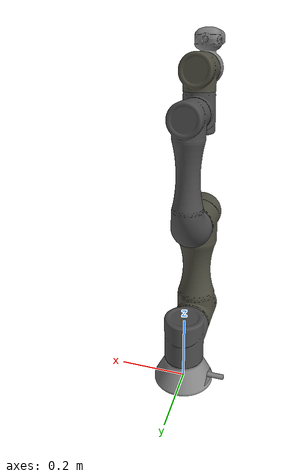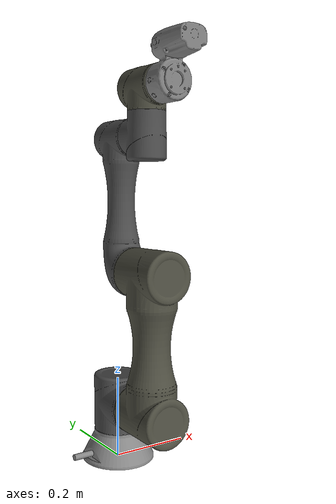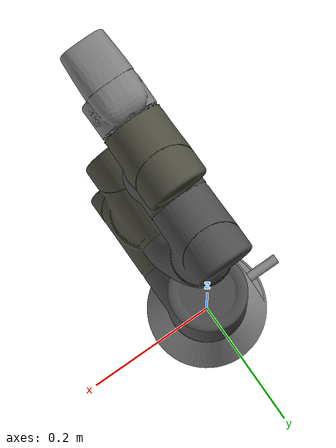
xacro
<?xml version="1.0"?>
<robot name="tm700" xmlns:xacro="http://www.ros.org/wiki/xacro">

  <xacro:property name="prefix" value="tm_" />

  <!-- gazebo stuff -->
  <xacro:include filename="$(find tm_description)/urdf/common.gazebo.xacro" />
  <xacro:include filename="$(find tm_description)/urdf/tm.gazebo.xacro" />
  <xacro:tm_arm_gazebo prefix="${prefix}" />

  <!-- tm700 -->
  <xacro:include filename="$(find tm_description)/urdf/tm700.urdf.xacro" />
  <xacro:tm700_robot prefix="${prefix}" joint_limited="true" />

  <link name="world" />
  <joint name="world_joint" type="fixed">
    <parent link="world" />
    <child link="tm_base" />
    <origin xyz="0 0 0" rpy="0 0 0" />
  </joint>

</robot>

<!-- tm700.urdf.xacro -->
<robot xmlns:xacro="http://www.ros.org/wiki/xacro">

  <!-- transmission -->
  <xacro:include filename="$(find tm_description)/urdf/tm.transmission.xacro" />

  <!-- Mass parameters -->
  <!--xacro:property name="pi" value="3.14159265" /-->

  <xacro:property name="base_mass" value="1.0" />
  <xacro:property name="shoulder_mass" value="4.5" />
  <xacro:property name="arm_1_mass" value="10.5" />
  <xacro:property name="arm_2_mass" value="2.1" />
  <xacro:property name="wrist_1_mass" value="1.45" />
  <xacro:property name="wrist_2_mass" value="1.45" />
  <xacro:property name="wrist_3_mass" value="0.4" />

  <!-- Kinematic model -->
  <!-- Properties from tmcontrol.conf -->
  <xacro:property name="tm_d1" value="0.1451" />
  <xacro:property name="tm_a2" value="0.3290" />
  <xacro:property name="tm_a3" value="0.3115" />
  <xacro:property name="tm_d4" value="0.1222" />
  <xacro:property name="tm_d5" value="0.1060" />
  <xacro:property name="tm_d6" value="0.1144" />

  <!-- offsets for shoulder/elbow joints -->
  <xacro:property name="shoulder_offset" value="-0.146" />  <!-- measured from model -->
  <xacro:property name="elbow_offset" value="0.1298" /> <!-- measured from model -->
  <xacro:property name="wrist_offset" value="${-tm_d4 - elbow_offset - shoulder_offset}" />

  <!-- link lengths used in model -->
  <xacro:property name="shoulder_height" value="${tm_d1}" />
  <xacro:property name="arm_1_length" value="${tm_a2}" />
  <xacro:property name="arm_2_length" value="${tm_a3}" />
  <xacro:property name="wrist_1_length" value="tm_d5}" />
  <xacro:property name="wrist_2_length" value="${tm_d5}" />
  <xacro:property name="wrist_3_length" value="0.0565" />
  <xacro:property name="ee_length" value="${tm_d6 - wrist_3_length}" />

  <xacro:macro name="cylinder_inertial" params="radius length mass *origin">
    <inertial>
      <mass value="${mass}" />
      <xacro:insert_block name="origin" />
      <inertia ixx="${0.0833333 * mass * (3 * radius * radius + length * length)}" ixy="0.0" ixz="0.0"
        iyy="${0.0833333 * mass * (3 * radius * radius + length * length)}" iyz="0.0"
        izz="${0.5 * mass * radius * radius}" />
    </inertial>
  </xacro:macro>

  <xacro:macro name="tm700_robot" params="prefix joint_limited">

    <!-- transmission prefix -->
    <xacro:tm_arm_transmission prefix="${prefix}" />

    <link name="${prefix}base_link" >
      <visual>
        <geometry>
	  <mesh filename="package://tm_description/meshes/tm700/visual/Base.dae" />
        </geometry>

      </visual>
      <collision>
        <geometry>
	  <mesh filename="package://tm_description/meshes/tm700/collision/base.STL" />
        </geometry>
      </collision>

      <xacro:cylinder_inertial radius="0.06" length="0.05" mass="${base_mass}">
        <origin xyz="0.0 0.0 0.0" rpy="0 0 0" />
      </xacro:cylinder_inertial>

    </link>

    <link name="${prefix}shoulder_1_link">
      <visual>
        <geometry>
	  <mesh filename="package://tm_description/meshes/tm700/visual/Shoulder1.dae" />
        </geometry>

      </visual>
      <collision>
        <geometry>
	  <mesh filename="package://tm_description/meshes/tm700/collision/shoulder_1.STL" />
        </geometry>
      </collision>

      <xacro:cylinder_inertial radius="0.06" length="0.15" mass="${shoulder_mass}">
        <origin xyz="0.0 0.0 0.0" rpy="0 0 0" />
      </xacro:cylinder_inertial>

    </link>

    <joint name="${prefix}shoulder_1_joint" type="revolute">
      <parent link="${prefix}base_link" />
      <child link = "${prefix}shoulder_1_link" />
      <origin xyz="0.0 0.0 ${shoulder_height}" rpy="${-0.5 * pi} 0.0 0.0" />
      <axis xyz="0 -1 0" />
      <xacro:unless value="${joint_limited}">
        <limit lower="${-2.0 * pi}" upper="${2.0 * pi}" effort="150.0" velocity="3.15"/>
      </xacro:unless>
      <xacro:if value="${joint_limited}">
        <limit lower="${-pi}" upper="${pi}" effort="150.0" velocity="3.15"/>
      </xacro:if>
      <dynamics damping="0.0" friction="0.0"/>
    </joint>

    <link name="${prefix}arm_1_link">
      <visual>
        <geometry>
	  <mesh filename="package://tm_description/meshes/tm700/visual/Arm1.dae" />
        </geometry>
        <material name="DarkOlive">
          <color rgba="0.3 0.3 0.25 1.0"/>
        </material>
      </visual>
      <collision>
        <geometry>
	  <mesh filename="package://tm_description/meshes/tm700/collision/arm_1.STL" />
        </geometry>
      </collision>

      <xacro:cylinder_inertial radius="0.06" length="0.56" mass="${arm_1_mass}">
        <origin xyz="0.0 0.0 0.28" rpy="0 0 0" />
      </xacro:cylinder_inertial>

    </link>

    <joint name="${prefix}shoulder_2_joint" type="revolute">
      <parent link="${prefix}shoulder_1_link" />
      <child link = "${prefix}arm_1_link" />
      <origin xyz="0.0 0.0 ${shoulder_offset}" rpy="0.0 0.0 ${-0.5 * pi}" />
      <axis xyz="0 0 1" />
      <xacro:unless value="${joint_limited}">
        <limit lower="${-1.5 * pi}" upper="${1.5 * pi}" effort="150.0" velocity="3.15"/>
      </xacro:unless>
      <xacro:if value="${joint_limited}">
        <limit lower="${-pi}" upper="${pi}" effort="150.0" velocity="3.15"/>
      </xacro:if>
      <dynamics damping="0.0" friction="0.0"/>
    </joint>

    <link name="${prefix}arm_2_link">
      <visual>
        <geometry>
	        <mesh filename="package://tm_description/meshes/tm700/visual/Arm2.dae" />
        </geometry>
      </visual>

      <collision>
        <geometry>
	  <mesh filename="package://tm_description/meshes/tm700/collision/arm_2.STL" />
        </geometry>
      </collision>

      <xacro:cylinder_inertial radius="0.06" length="0.5" mass="${arm_2_mass}">
        <origin xyz="0.0 0.0 0.25" rpy="0 0 0" />
      </xacro:cylinder_inertial>

    </link>

    <joint name="${prefix}elbow_1_joint" type="revolute">
      <parent link="${prefix}arm_1_link" />
      <child link = "${prefix}arm_2_link" />
      <origin xyz="${arm_1_length} 0.0 ${elbow_offset}" rpy="0.0 0.0 0.0" />
      <axis xyz="0 0 1" />
      <xacro:unless value="${joint_limited}">
        <limit lower="${-1.5 * pi}" upper="${1.5 * pi}" effort="150.0" velocity="3.15"/>
      </xacro:unless>
      <xacro:if value="${joint_limited}">
        <limit lower="${-pi}" upper="${pi}" effort="150.0" velocity="3.15"/>
      </xacro:if>
      <dynamics damping="0.0" friction="0.0"/>
    </joint>

    <link name="${prefix}wrist_1_link">
      <visual>
        <geometry>
	  <mesh filename="package://tm_description/meshes/tm700/visual/Wrist1.dae" />
        </geometry>

      </visual>
      <collision>
        <geometry>
	  <mesh filename="package://tm_description/meshes/tm700/collision/wrist_1.STL" />
        </geometry>
      </collision>

      <xacro:cylinder_inertial radius="0.6" length="0.12" mass="${wrist_1_mass}">
        <origin xyz="0.0 0.0 0.0" rpy="0 0 0" />
      </xacro:cylinder_inertial>

    </link>

    <joint name="${prefix}wrist_1_joint" type="revolute">
      <parent link="${prefix}arm_2_link" />
      <child link = "${prefix}wrist_1_link" />
      <origin xyz="${arm_2_length} 0.0 ${wrist_offset}" rpy="${0.5 * pi} 0.0 ${0.5 * pi}" />
      <axis xyz="0 1 0" />
      <xacro:unless value="${joint_limited}">
        <limit lower="${-2.0 * pi}" upper="${2.0 * pi}" effort="28.0" velocity="3.2"/>
      </xacro:unless>
      <xacro:if value="${joint_limited}">
        <limit lower="${-pi}" upper="${pi}" effort="28.0" velocity="3.2"/>
      </xacro:if>
      <dynamics damping="0.0" friction="0.0"/>
    </joint>

    <link name="${prefix}wrist_2_link">
      <visual>
        <geometry>
	  <mesh filename="package://tm_description/meshes/tm700/visual/Wrist2.dae" />
        </geometry>
        <material name="DarkOlive">
          <color rgba="0.3 0.3 0.25 1.0"/>
        </material>
      </visual>
      <collision>
        <geometry>
	  <mesh filename="package://tm_description/meshes/tm700/collision/wrist_2.STL" />
        </geometry>
      </collision>

      <xacro:cylinder_inertial radius="0.6" length="0.12" mass="${wrist_2_mass}">
        <origin xyz="0.0 0.0 0.0" rpy="0 0 0" />
      </xacro:cylinder_inertial>

    </link>

    <joint name="${prefix}wrist_2_joint" type="revolute">
      <parent link="${prefix}wrist_1_link" />
      <child link = "${prefix}wrist_2_link" />
      <origin xyz="0.0 0.0 ${wrist_2_length}" rpy="${0.5 * pi} 0.0 0.0" />
      <axis xyz="0 1 0" />
      <xacro:unless value="${joint_limited}">
        <limit lower="${-2.0 * pi}" upper="${2.0 * pi}" effort="28.0" velocity="3.2"/>
      </xacro:unless>
      <xacro:if value="${joint_limited}">
        <limit lower="${-pi}" upper="${pi}" effort="28.0" velocity="3.2"/>
      </xacro:if>
      <dynamics damping="0.0" friction="0.0"/>
    </joint>

    <link name="${prefix}wrist_3_link">
      <visual>
        <geometry>
	  <mesh filename="package://tm_description/meshes/tm700/visual/Wrist3.dae" />
        </geometry>
	<origin xyz="0 0 0.015" rpy="0 0 0"/>
        <material name="Grey">
          <color rgba="0.5 0.5 0.5 1.0"/>
        </material>
      </visual>
      <collision>
        <geometry>
	  <mesh filename="package://tm_description/meshes/tm700/collision/wrist_3.STL" />
        </geometry>
      </collision>

      <xacro:cylinder_inertial radius="0.6" length="0.12" mass="${wrist_3_mass}">
        <origin xyz="0.0 0.0 0.0" rpy="0 0 0" />
      </xacro:cylinder_inertial>

    </link>

    <joint name="${prefix}wrist_3_joint" type="revolute">
      <parent link="${prefix}wrist_2_link" />
      <child link = "${prefix}wrist_3_link" />
      <origin xyz="0.0 0.0 ${wrist_3_length}" rpy="0.0 0.0 0.0" />
      <axis xyz="0 0 1" />
      <xacro:unless value="${joint_limited}">
        <limit lower="${-2.0 * pi}" upper="${2.0 * pi}" effort="28.0" velocity="3.2"/>
      </xacro:unless>
      <xacro:if value="${joint_limited}">
        <limit lower="${-pi}" upper="${pi}" effort="28.0" velocity="3.2"/>
      </xacro:if>
      <dynamics damping="0.0" friction="0.0"/>
    </joint>

    <link name="${prefix}tip_link">
      <collision>
        <geometry>
          <box size="0.05 0.05 0.05"/>
        </geometry>
        <origin xyz="0 0 0.025" rpy="0 0 0"/>
      </collision>
    </link>

    <joint name="${prefix}tip_fixed_joint" type="fixed">
      <parent link="${prefix}wrist_3_link" />
      <child link = "${prefix}tip_link" />
      <origin xyz="0.0 0.0 ${ee_length}" rpy="0.0 0.0 0.0" />
    </joint>

    <!-- ROS base to TM 'base_link' Coordinates transform -->
    <link name="${prefix}base"/>
    <joint name="${prefix}base-base_link" type="fixed">
      <origin xyz="0 0 0" rpy="0 0 0"/>
      <parent link="${prefix}base"/>
      <child link="${prefix}base_link"/>
    </joint>

    <!-- Frame coincident with all-zeros TCP on TM controller -->
    <link name="${prefix}tool0"/>
    <joint name="${prefix}tip_link-tool0" type="fixed">
      <parent link="${prefix}tip_link"/>
      <child link="${prefix}tool0"/>
      <origin xyz="0 0 0" rpy="0 0 0"/>
    </joint>

  </xacro:macro>

</robot>
